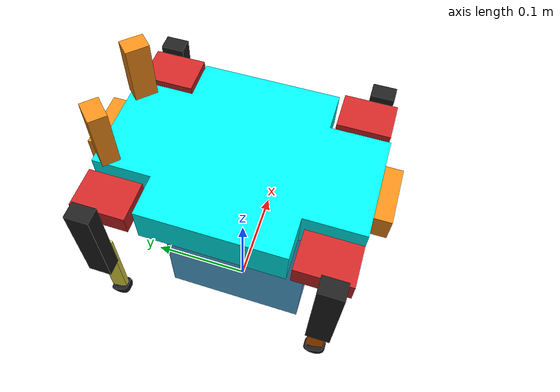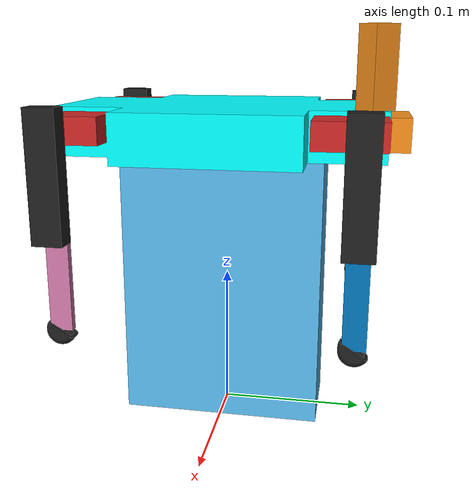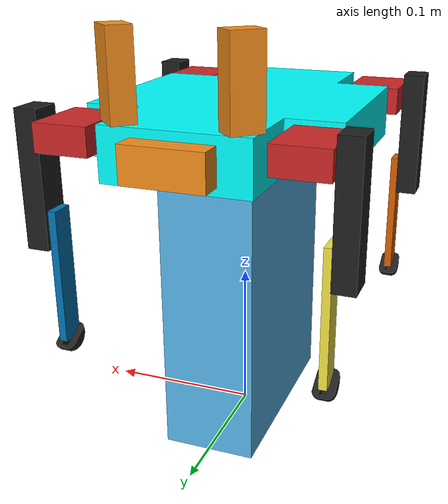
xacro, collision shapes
<?xml version="1.0" ?>
<robot name="dreamwalker_dummy" xmlns:xacro="http://www.ros.org/wiki/xacro">

	<xacro:include filename="$(find dreamwalker_description)/urdf/dreamwalker.gazebo" />
  	<xacro:include filename="$(find dreamwalker_description)/urdf/materials.xacro" />

	<!-- WORLD LINK -->
	<link name="world"/>

  	<joint name="fixed" type="fixed">
    	<parent link="world"/>
    	<child link="support_element"/>
  	</joint>

  	<!-- SUPPORT ELEMENT -->

	<link name="support_element">

		<inertial>
			<mass value="0.8"/>
			<origin xyz="0 0 0.082" rpy="0 0 0"/>
			<inertia ixx="0.002858" ixy="0" ixz="0" iyy="0.002726" iyz="0" izz="0.0006479"/>
		</inertial>

		<collision name="collision_base">
			<origin xyz="0 0 0.095" rpy="0 0 0"/>
			<geometry>
				<box size="0.06 0.14 0.19"/>
			</geometry>
		</collision>

		<visual>
			<origin xyz="0 0 0" rpy="0 0 0"/>
			<geometry>
				<mesh filename="package://dreamwalker_description/meshes/support_test_element.dae" scale="0.001 0.001 0.001" />
			</geometry>
		</visual>

	</link>

	<joint name="dummy_joint" type="revolute">

		<origin xyz="0 0 0.19" rpy="0 0 0"/>
		<parent link="support_element"/>
		<child link="main_body"/>
		<limit effort="1000" velocity="0.0" lower="0" upper="0" />
	</joint>

	<!--### ROBOT BODY ### -->

	<link name="main_body">

		<inertial>
			<mass value="0.388"/>
			<origin xyz="0 0 0.0155" rpy="0 0 0"/>
			<inertia ixx="0.001096" ixy="0" ixz="0" iyy="0.0006744" iyz="0" izz="0.001658"/>
		</inertial>

		<collision name="collision_base">
			<origin xyz="0 0 0" rpy="0 0 0"/>
			<geometry>
				<mesh filename="package://dreamwalker_description/meshes/main_body_collision.stl" scale="0.001 0.001 0.001" />
			</geometry>
		</collision>

		<visual>
			<origin xyz="0 0 0" rpy="0 0 0"/>
			<geometry>
				<mesh filename="package://dreamwalker_description/meshes/main_body.stl" scale="0.001 0.001 0.001" />
			</geometry>
			<material name="Cyan">
  		        <color rgba="0 1.0 1.0 1.0"/>
  			</material>
		</visual>

	</link>

	<!--### SHOULDERS ### -->

	<link name="link_shoulder1">

		<inertial>
			<mass value="0.0198"/>
			<origin xyz="-0.008165 0.022472 0" rpy="0 0 0"/>
			<inertia ixx="0.000003218011" ixy="0.000000199995" ixz="0" iyy="0.000001946476" iyz="0" izz="0.000004027678"/>
		</inertial>

		<collision name="collision_base">
			<origin xyz="-0.007 0.0225 0" rpy="0 0 0"/>
			<geometry>
				<box size="0.034 0.045 0.0175"/>
			</geometry>
		</collision>

		<visual>
			<origin xyz="0 0 0" rpy="0 0 0"/>
			<geometry>
				<mesh filename="package://dreamwalker_description/meshes/link_shoulder1.stl" scale="0.001 0.001 0.001" />
			</geometry>
		</visual>

	</link>

	<link name="link_shoulder2">

		<inertial>
			<mass value="0.0198"/>
			<origin xyz="0.008165 0.022472 0" rpy="0 0 0"/>
			<inertia ixx="0.000003218011" ixy="-0.000000199995" ixz="0" iyy="0.000001946476" iyz="0" izz="0.000004027678"/>
		</inertial>

		<collision name="collision_base">
			<origin xyz="0.007 0.0225 0" rpy="0 0 0"/>
			<geometry>
				<box size="0.034 0.045 0.0175"/>
			</geometry>
		</collision>

		<visual>
			<origin xyz="0 0 0" rpy="0 0 0"/>
			<geometry>
				<mesh filename="package://dreamwalker_description/meshes/link_shoulder2.stl" scale="0.001 0.001 0.001" />
			</geometry>
		</visual>

	</link>

	<link name="link_shoulder3">

		<inertial>
			<mass value="0.0198"/>
			<origin xyz="-0.008165 -0.022472 0" rpy="0 0 0"/>
			<inertia ixx="0.000003218011" ixy="-0.000000199995" ixz="0" iyy="0.000001946476" iyz="0" izz="0.000004027678"/>
		</inertial>

		<collision name="collision_base">
			<origin xyz="-0.007 -0.0225 0" rpy="0 0 0"/>
			<geometry>
				<box size="0.034 0.045 0.0175"/>
			</geometry>
		</collision>

		<visual>
			<origin xyz="0 0 0" rpy="0 0 0"/>
			<geometry>
				<mesh filename="package://dreamwalker_description/meshes/link_shoulder3.stl" scale="0.001 0.001 0.001" />
			</geometry>
		</visual>

	</link>

	<link name="link_shoulder4">

		<inertial>
			<mass value="0.0198"/>
			<origin xyz="0.008165 -0.022472 0" rpy="0 0 0"/>
			<inertia ixx="0.000003218011" ixy="0.000000199995" ixz="0" iyy="0.000001946476" iyz="0" izz="0.000004027678"/>
		</inertial>

		<collision name="collision_base">
			<origin xyz="0.007 -0.0225 0" rpy="0 0 0"/>
			<geometry>
				<box size="0.034 0.045 0.0175"/>
			</geometry>
		</collision>

		<visual>
			<origin xyz="0 0 0" rpy="0 0 0"/>
			<geometry>
				<mesh filename="package://dreamwalker_description/meshes/link_shoulder4.stl" scale="0.001 0.001 0.001" />
			</geometry>
		</visual>

	</link>

	<!--### FEMURS ### -->

	<link name="link_femur1">

		<inertial>
			<mass value="0.0218"/>
			<origin xyz="-0.012278 0 -0.031262" rpy="0 0 0"/>
			<inertia ixx="0.00001388" ixy="0" ixz="-0.000000908897" iyy="0.00001369" iyz="0" izz="0.000001695609"/>
		</inertial>

		<collision name="collision_base">
			<origin xyz="-0.00725 0 -0.0275" rpy="0 0 0"/>
			<geometry>
				<box size="0.014 0.02 0.085"/>
			</geometry>
		</collision>

		<visual>
			<origin xyz="0 0 0" rpy="0 0 0"/>
			<geometry>
				<mesh filename="package://dreamwalker_description/meshes/link_femur1.stl" scale="0.001 0.001 0.001" />
			</geometry>
			<material name="black"/>
		</visual>

	</link>

	<link name="link_femur2">

		<inertial>
			<mass value="0.0218"/>
			<origin xyz="0.012278 0 -0.031262" rpy="0 0 0"/>
			<inertia ixx="0.00001388" ixy="0" ixz="0.000000908897" iyy="0.00001369" iyz="0" izz="0.000001695609"/>
		</inertial>

		<collision name="collision_base">
			<origin xyz="0.00725 0 -0.0275" rpy="0 0 0"/>
			<geometry>
				<box size="0.014 0.02 0.085"/>
			</geometry>
		</collision>

		<visual>
			<origin xyz="0 0 0" rpy="0 0 0"/>
			<geometry>
				<mesh filename="package://dreamwalker_description/meshes/link_femur2.stl" scale="0.001 0.001 0.001" />
			</geometry>
			<material name="black"/>
		</visual>

	</link>

	<link name="link_femur3">

		<inertial>
			<mass value="0.0218"/>
			<origin xyz="-0.012278 0 -0.031262" rpy="0 0 0"/>
			<inertia ixx="0.00001388" ixy="0" ixz="-0.000000908897" iyy="0.00001369" iyz="0" izz="0.000001695609"/>
		</inertial>

		<collision name="collision_base">
			<origin xyz="-0.00725 0 -0.0275" rpy="0 0 0"/>
			<geometry>
				<box size="0.014 0.02 0.085"/>
			</geometry>
		</collision>

		<visual>
			<origin xyz="0 0 0" rpy="0 0 0"/>
			<geometry>
				<mesh filename="package://dreamwalker_description/meshes/link_femur3.stl" scale="0.001 0.001 0.001" />
			</geometry>
			<material name="black"/>
		</visual>

	</link>

	<link name="link_femur4">

		<inertial>
			<mass value="0.0218"/>
			<origin xyz="0.012278 0 -0.031262" rpy="0 0 0"/>
			<inertia ixx="0.00001388" ixy="0" ixz="0.000000908897" iyy="0.00001369" iyz="0" izz="0.000001695609"/>
		</inertial>

		<collision name="collision_base">
			<origin xyz="0.00725 0 -0.0275" rpy="0 0 0"/>
			<geometry>
				<box size="0.014 0.02 0.085"/>
			</geometry>
		</collision>

		<visual>
			<origin xyz="0 0 0" rpy="0 0 0"/>
			<geometry>
				<mesh filename="package://dreamwalker_description/meshes/link_femur4.stl" scale="0.001 0.001 0.001" />
			</geometry>
			<material name="black"/>
		</visual>

	</link>

	<link name="link_tibia1">

		<inertial>
			<mass value="0.00730"/>
			<origin xyz="-0.0025 0.0009 -0.032102" rpy="0 0 0"/>
			<inertia ixx="0.0000050464" ixy="0" ixz="0" iyy="0.000004893134" iyz="0.00000009901" izz="0.00000018368"/>
		</inertial>

		<collision name="collision_base">
			<origin xyz="-0.0025 0 -0.033" rpy="0 0 0"/>
			<geometry>
				<box size="0.005 0.015 0.085"/>
			</geometry>
		</collision>

		<visual>
			<origin xyz="0 0 0" rpy="0 0 0"/>
			<geometry>
				<mesh filename="package://dreamwalker_description/meshes/link_forearm1.stl" scale="0.001 0.001 0.001" />
			</geometry>
		</visual>

	</link>

	<link name="link_tibia2">

		<inertial>
			<mass value="0.00730"/>
			<origin xyz="0.0025 0.0009 -0.032102" rpy="0 0 0"/>
			<inertia ixx="0.0000050464" ixy="0" ixz="0" iyy="0.000004893134" iyz="0.00000009901" izz="0.00000018368"/>
		</inertial>

		<collision name="collision_base">
			<origin xyz="0.0025 0 -0.033" rpy="0 0 0"/>
			<geometry>
				<box size="0.005 0.015 0.085"/>
			</geometry>
		</collision>

		<visual>
			<origin xyz="0 0 0" rpy="0 0 0"/>
			<geometry>
				<mesh filename="package://dreamwalker_description/meshes/link_forearm2.stl" scale="0.001 0.001 0.001" />
			</geometry>
		</visual>

	</link>

	<link name="link_tibia3">

		<inertial>
			<mass value="0.00730"/>
			<origin xyz="-0.0025 0.0009 -0.032102" rpy="0 0 0"/>
			<inertia ixx="0.0000050464" ixy="0" ixz="0" iyy="0.000004893134" iyz="0.00000009901" izz="0.00000018368"/>
		</inertial>

		<collision name="collision_base">
			<origin xyz="-0.0025 0 -0.033" rpy="0 0 0"/>
			<geometry>
				<box size="0.005 0.015 0.085"/>
			</geometry>
		</collision>

		<visual>
			<origin xyz="0 0 0" rpy="0 0 0"/>
			<geometry>
				<mesh filename="package://dreamwalker_description/meshes/link_forearm1.stl" scale="0.001 0.001 0.001" />
			</geometry>
		</visual>

	</link>

	<link name="link_tibia4">

		<inertial>
			<mass value="0.00730"/>
			<origin xyz="0.0025 0.0009 -0.032102" rpy="0 0 0"/>
			<inertia ixx="0.0000050464" ixy="0" ixz="0" iyy="0.000004893134" iyz="0.00000009901" izz="0.00000018368"/>
		</inertial>

		<collision name="collision_base">
			<origin xyz="0.0025 0 -0.033" rpy="0 0 0"/>
			<geometry>
				<box size="0.005 0.015 0.085"/>
			</geometry>
		</collision>

		<visual>
			<origin xyz="0 0 0" rpy="0 0 0"/>
			<geometry>
				<mesh filename="package://dreamwalker_description/meshes/link_forearm2.stl" scale="0.001 0.001 0.001" />
			</geometry>
		</visual>

	</link>

	<link name="link_foot1">

		<inertial>
			<mass value="0.0013"/>
			<origin xyz="0 0 -0.004355" rpy="0 0 0"/>
			<inertia ixx="0.000000043185" ixy="0" ixz="0" iyy="0.000000029326" iyz="-0.000000074876" izz="0.000000054089"/>
		</inertial>

		<collision>
			<origin xyz="0 0 0" rpy="0 0 0"/>
			<geometry>
				<mesh filename="package://dreamwalker_description/meshes/link_foot.dae" scale="0.001 0.001 0.001" />
			</geometry>
		</collision>

		<visual>
			<origin xyz="0 0 0" rpy="0 0 0"/>
			<geometry>
				<mesh filename="package://dreamwalker_description/meshes/link_foot.dae" scale="0.001 0.001 0.001" />
			</geometry>
			<material name="black"/>
		</visual>

	</link>

	<link name="link_foot2">

		<inertial>
			<mass value="0.0013"/>
			<origin xyz="0 0 -0.004355" rpy="0 0 0"/>
			<inertia ixx="0.000000043185" ixy="0" ixz="0" iyy="0.000000029326" iyz="-0.000000074876" izz="0.000000054089"/>
		</inertial>

		<collision>
			<origin xyz="0 0 0" rpy="0 0 0"/>
			<geometry>
				<mesh filename="package://dreamwalker_description/meshes/link_foot.dae" scale="0.001 0.001 0.001" />
			</geometry>
		</collision>

		<visual>
			<origin xyz="0 0 0" rpy="0 0 0"/>
			<geometry>
				<mesh filename="package://dreamwalker_description/meshes/link_foot.dae" scale="0.001 0.001 0.001" />
			</geometry>
			<material name="black"/>
		</visual>

	</link>

	<link name="link_foot3">

		<inertial>
			<mass value="0.0013"/>
			<origin xyz="0 0 -0.004355" rpy="0 0 0"/>
			<inertia ixx="0.000000043185" ixy="0" ixz="0" iyy="0.000000029326" iyz="-0.000000074876" izz="0.000000054089"/>
		</inertial>

		<collision>
			<origin xyz="0 0 0" rpy="0 0 0"/>
			<geometry>
				<mesh filename="package://dreamwalker_description/meshes/link_foot.dae" scale="0.001 0.001 0.001" />
			</geometry>
		</collision>

		<visual>
			<origin xyz="0 0 0" rpy="0 0 0"/>
			<geometry>
				<mesh filename="package://dreamwalker_description/meshes/link_foot.dae" scale="0.001 0.001 0.001" />
			</geometry>
			<material name="black"/>
		</visual>

	</link>

	<link name="link_foot4">

		<inertial>
			<mass value="0.0013"/>
			<origin xyz="0 0 -0.004355" rpy="0 0 0"/>
			<inertia ixx="0.000000043185" ixy="0" ixz="0" iyy="0.000000029326" iyz="-0.000000074876" izz="0.000000054089"/>
		</inertial>

		<collision>
			<origin xyz="0 0 0" rpy="0 0 0"/>
			<geometry>
				<mesh filename="package://dreamwalker_description/meshes/link_foot.dae" scale="0.001 0.001 0.001" />
			</geometry>
		</collision>

		<visual>
			<origin xyz="0 0 0" rpy="0 0 0"/>
			<geometry>
				<mesh filename="package://dreamwalker_description/meshes/link_foot.dae" scale="0.001 0.001 0.001" />
			</geometry>
			<material name="black"/>
		</visual>

	</link>

	<!-- ### JOINTS ### -->

	<joint name="shoulder_joint1" type="revolute">

		<origin xyz="-0.062 0.064 0.022" rpy="0 0 0"/>
		<axis xyz="0 1 0"/>
		<parent link="main_body"/>
		<child link="link_shoulder1"/>
		<limit effort="2.5" velocity="1.0" lower="-0.5235987755983" upper="0.5235987755983" />
	</joint>

	<joint name="shoulder_joint2" type="revolute">

		<origin xyz="0.062 0.064 0.022" rpy="0 0 0"/>
		<axis xyz="0 1 0"/>
		<parent link="main_body"/>
		<child link="link_shoulder2"/>
		<limit effort="2.5" velocity="1.0" lower="-0.5235987755983" upper="0.5235987755983" />
	</joint>

	<joint name="shoulder_joint3" type="revolute">

		<origin xyz="-0.062 -0.064 0.022" rpy="0 0 0"/>
		<axis xyz="0 1 0"/>
		<parent link="main_body"/>
		<child link="link_shoulder3"/>
		<limit effort="2.5" velocity="1.0" lower="-0.5235987755983" upper="0.5235987755983" />
	</joint>

	<joint name="shoulder_joint4" type="revolute">

		<origin xyz="0.062 -0.064 0.022" rpy="0 0 0"/>
		<axis xyz="0 1 0"/>
		<parent link="main_body"/>
		<child link="link_shoulder4"/>
		<limit effort="2.5" velocity="1.0" lower="-0.52359" upper="0.52359" />
	</joint>

	<joint name="limb_joint1" type="revolute">

		<origin xyz="-0.024 0.0305 0" rpy="0 0 0"/>
		<axis xyz="1 0 0"/>
		<parent link="link_shoulder1"/>
		<child link="link_femur1"/>
		<limit effort="2.5" velocity="1.0" lower="-1.57079" upper="1.57079" />
	</joint>

	<joint name="limb_joint2" type="revolute">

		<origin xyz="0.024 0.0305 0" rpy="0 0 0"/>
		<axis xyz="1 0 0"/>
		<parent link="link_shoulder2"/>
		<child link="link_femur2"/>
		<limit effort="2.5" velocity="1.0" lower="-1.57079" upper="1.57079" />
	</joint>

	<joint name="limb_joint3" type="revolute">

		<origin xyz="-0.024 -0.0305 0" rpy="0 0 0"/>
		<axis xyz="1 0 0"/>
		<parent link="link_shoulder3"/>
		<child link="link_femur3"/>
		<limit effort="2.5" velocity="1.0" lower="-1.57079" upper="1.57079" />
	</joint>

	<joint name="limb_joint4" type="revolute">

		<origin xyz="0.024 -0.0305 0" rpy="0 0 0"/>
		<axis xyz="1 0 0"/>
		<parent link="link_shoulder4"/>
		<child link="link_femur4"/>
		<limit effort="2.5" velocity="1.0" lower="-1.57079" upper="1.57079" />
	</joint>

	<joint name="knee_joint1" type="revolute">

		<origin xyz="0.005 0 -0.055" rpy="0 0 0"/>
		<axis xyz="1 0 0"/>
		<parent link="link_femur1"/>
		<child link="link_tibia1"/>
		<limit effort="2.5" velocity="1.0" lower="0" upper="2.617993878" />
	</joint>

	<joint name="knee_joint2" type="revolute">

		<origin xyz="-0.005 0 -0.055" rpy="0 0 0"/>
		<axis xyz="1 0 0"/>
		<parent link="link_femur2"/>
		<child link="link_tibia2"/>
		<limit effort="2.5" velocity="1.0" lower="0" upper="2.617993878" />
	</joint>

	<joint name="knee_joint3" type="revolute">

		<origin xyz="0.005 0 -0.055" rpy="0 0 0"/>
		<axis xyz="1 0 0"/>
		<parent link="link_femur3"/>
		<child link="link_tibia3"/>
		<limit effort="2.5" velocity="1.0" lower="0" upper="2.617993878" />
	</joint>

	<joint name="knee_joint4" type="revolute">

		<origin xyz="-0.005 0 -0.055" rpy="0 0 0"/>
		<axis xyz="1 0 0"/>
		<parent link="link_femur4"/>
		<child link="link_tibia4"/>
		<limit effort="2.5" velocity="1.0" lower="0" upper="2.617993878" />
	</joint>

	<joint name="foot_joint1" type="fixed">

		<origin xyz="-0.0025 0 -0.075" rpy="-0.52359 0 0"/>
		<parent link="link_tibia1"/>
		<child link="link_foot1"/>
	</joint>

	<joint name="foot_joint2" type="fixed">

		<origin xyz="0.0025 0 -0.075" rpy="-0.52359 0 0"/>
		<parent link="link_tibia2"/>
		<child link="link_foot2"/>
	</joint>

	<joint name="foot_joint3" type="fixed">

		<origin xyz="-0.0025 0 -0.075" rpy="-0.52359 0 0"/>
		<parent link="link_tibia3"/>
		<child link="link_foot3"/>
	</joint>

	<joint name="foot_joint4" type="fixed">

		<origin xyz="0.0025 0 -0.075" rpy="-0.52359 0 0"/>
		<parent link="link_tibia4"/>
		<child link="link_foot4"/>
	</joint>

	<!-- ### SENSORS ### -->

	<link name="link_m_sensor">

		<inertial>
			<mass value="0.0102"/>
			<origin xyz="0 0.01591 0.011" rpy="0 0 0"/>
			<inertia ixx="0.000000566328" ixy="0" ixz="0" iyy="0.000002259218" iyz="-0.0000000944" izz="0.000002156532"/>
		</inertial>

		<collision name="collision_base">
			<origin xyz="0 0.015 0.01125" rpy="0 0 0"/>
			<geometry>
				<box size="0.050 0.0293 0.0225"/>
			</geometry>
		</collision>

		<visual>
			<origin xyz="0 0 0" rpy="0 0 0"/>
			<geometry>
				<mesh filename="package://dreamwalker_description/meshes/link_fb_sensor.stl" scale="0.001 0.001 0.001" />
			</geometry>
		</visual>

	</link>

	<joint name="m_sensor_joint" type="revolute">

		<origin xyz="0 0.095 0.005" rpy="0 0 0"/>
		<parent link="main_body"/>
		<child link="link_m_sensor"/>
		<limit effort="1000" velocity="0.0" lower="0" upper="0" />
	</joint>

	<link name="link_b_sensor">

		<inertial>
			<mass value="0.0102"/>
			<origin xyz="0 0.01591 0.011" rpy="0 0 0"/>
			<inertia ixx="0.000000566328" ixy="0" ixz="0" iyy="0.000002259218" iyz="-0.0000000944" izz="0.000002156532"/>
		</inertial>

		<collision name="collision_base">
			<origin xyz="0 0.015 0.01125" rpy="0 0 0"/>
			<geometry>
				<box size="0.050 0.0293 0.0225"/>
			</geometry>
		</collision>

		<visual>
			<origin xyz="0 0 0" rpy="0 0 0"/>
			<geometry>
				<mesh filename="package://dreamwalker_description/meshes/link_fb_sensor.stl" scale="0.001 0.001 0.001" />
			</geometry>
		</visual>

	</link>

	<joint name="b_sensor_joint" type="revolute">

		<origin xyz="0 -0.095 0.005" rpy="0 0 3.141592"/>
		<parent link="main_body"/>
		<child link="link_b_sensor"/>
		<limit effort="1000" velocity="0.0" lower="0" upper="0" />
	</joint>

	<link name="link_l_sensor">

		<inertial>
			<mass value="0.00983"/>
			<origin xyz="0 0.01336 0.02495" rpy="0 0 0"/>
			<inertia ixx="0.000002392374" ixy="0" ixz="0" iyy="0.000002455416" iyz="-0.000000093261" izz="0.000000406513"/>
		</inertial>

		<collision name="collision_base">
			<origin xyz="0 0.015 0.025" rpy="0 0 0"/>
			<geometry>
				<box size="0.020 0.015 0.052"/>
			</geometry>
		</collision>

		<visual>
			<origin xyz="0 0 0" rpy="0 0 0"/>
			<geometry>
				<mesh filename="package://dreamwalker_description/meshes/link_rl_sensor.stl" scale="0.001 0.001 0.001" />
			</geometry>
		</visual>

	</link>

	<joint name="l_sensor_joint" type="revolute">

		<origin xyz="-0.025 0.090 0.034" rpy="0 0 0.785398163"/>
		<parent link="main_body"/>
		<child link="link_l_sensor"/>
		<limit effort="1000" velocity="0.0" lower="0" upper="0" />
	</joint>

	<link name="link_r_sensor">

		<inertial>
			<mass value="0.00983"/>
			<origin xyz="0 0.01336 0.02495" rpy="0 0 0"/>
			<inertia ixx="0.000002392374" ixy="0" ixz="0" iyy="0.000002455416" iyz="-0.000000093261" izz="0.000000406513"/>
		</inertial>

		<collision name="collision_base">
			<origin xyz="0 0.015 0.025" rpy="0 0 0"/>
			<geometry>
				<box size="0.020 0.015 0.052"/>
			</geometry>
		</collision>

		<visual>
			<origin xyz="0 0 0" rpy="0 0 0"/>
			<geometry>
				<mesh filename="package://dreamwalker_description/meshes/link_rl_sensor.stl" scale="0.001 0.001 0.001" />
			</geometry>
		</visual>

	</link>

	<joint name="r_sensor_joint" type="revolute">

		<origin xyz="0.025 0.090 0.034" rpy="0 0 -0.785398163"/>
		<parent link="main_body"/>
		<child link="link_r_sensor"/>
		<limit effort="1000" velocity="0.0" lower="0" upper="0" />
	</joint>

	<!-- ### TRANSMISSIONS -->

	<transmission name="tran_sh1">

    	<type>transmission_interface/SimpleTransmission</type>

    	<joint name="shoulder_joint1">
      		<hardwareInterface>hardware_interface/EffortJointInterface</hardwareInterface>
    	</joint>

    	<actuator name="shoulder1">
      		<hardwareInterface>EffortJointInterface</hardwareInterface>
      		<mechanicalReduction>1</mechanicalReduction>
    	</actuator>

  	</transmission>

  	<transmission name="tran_sh2">

    	<type>transmission_interface/SimpleTransmission</type>

    	<joint name="shoulder_joint2">
      		<hardwareInterface>hardware_interface/EffortJointInterface</hardwareInterface>
    	</joint>

    	<actuator name="shoulder2">
      		<hardwareInterface>EffortJointInterface</hardwareInterface>
      		<mechanicalReduction>1</mechanicalReduction>
    	</actuator>

  	</transmission>

  	<transmission name="tran_sh3">

    	<type>transmission_interface/SimpleTransmission</type>

    	<joint name="shoulder_joint3">
      		<hardwareInterface>hardware_interface/EffortJointInterface</hardwareInterface>
    	</joint>

    	<actuator name="shoulder3">
      		<hardwareInterface>EffortJointInterface</hardwareInterface>
      		<mechanicalReduction>1</mechanicalReduction>
    	</actuator>

  	</transmission>

  	<transmission name="tran_sh4">

    	<type>transmission_interface/SimpleTransmission</type>

    	<joint name="shoulder_joint4">
      		<hardwareInterface>hardware_interface/EffortJointInterface</hardwareInterface>
    	</joint>

    	<actuator name="shoulder4">
      		<hardwareInterface>EffortJointInterface</hardwareInterface>
      		<mechanicalReduction>1</mechanicalReduction>
    	</actuator>

  	</transmission>

  	<transmission name="tran_lim1">

    	<type>transmission_interface/SimpleTransmission</type>

    	<joint name="limb_joint1">
      		<hardwareInterface>hardware_interface/EffortJointInterface</hardwareInterface>
    	</joint>

    	<actuator name="arm1">
      		<hardwareInterface>EffortJointInterface</hardwareInterface>
      		<mechanicalReduction>1</mechanicalReduction>
    	</actuator>

  	</transmission>

  	<transmission name="tran_lim2">

    	<type>transmission_interface/SimpleTransmission</type>

    	<joint name="limb_joint2">
      		<hardwareInterface>hardware_interface/EffortJointInterface</hardwareInterface>
    	</joint>

    	<actuator name="arm2">
      		<hardwareInterface>EffortJointInterface</hardwareInterface>
      		<mechanicalReduction>1</mechanicalReduction>
    	</actuator>

  	</transmission>

  	<transmission name="tran_lim3">

    	<type>transmission_interface/SimpleTransmission</type>

    	<joint name="limb_joint3">
      		<hardwareInterface>hardware_interface/EffortJointInterface</hardwareInterface>
    	</joint>

    	<actuator name="arm3">
      		<hardwareInterface>EffortJointInterface</hardwareInterface>
      		<mechanicalReduction>1</mechanicalReduction>
    	</actuator>

  	</transmission>

  	<transmission name="tran_lim4">

    	<type>transmission_interface/SimpleTransmission</type>

    	<joint name="limb_joint4">
      		<hardwareInterface>hardware_interface/EffortJointInterface</hardwareInterface>
    	</joint>

    	<actuator name="arm4">
      		<hardwareInterface>EffortJointInterface</hardwareInterface>
      		<mechanicalReduction>1</mechanicalReduction>
    	</actuator>

  	</transmission>

  	<transmission name="tran_knee1">

    	<type>transmission_interface/SimpleTransmission</type>

    	<joint name="knee_joint1">
      		<hardwareInterface>hardware_interface/EffortJointInterface</hardwareInterface>
    	</joint>

    	<actuator name="forearm1">
      		<hardwareInterface>EffortJointInterface</hardwareInterface>
      		<mechanicalReduction>1</mechanicalReduction>
    	</actuator>

  	</transmission>

  	<transmission name="tran_knee2">

    	<type>transmission_interface/SimpleTransmission</type>

    	<joint name="knee_joint2">
      		<hardwareInterface>hardware_interface/EffortJointInterface</hardwareInterface>
    	</joint>

    	<actuator name="forearm2">
      		<hardwareInterface>EffortJointInterface</hardwareInterface>
      		<mechanicalReduction>1</mechanicalReduction>
    	</actuator>

  	</transmission>

  	<transmission name="tran_knee3">

    	<type>transmission_interface/SimpleTransmission</type>

    	<joint name="knee_joint3">
      		<hardwareInterface>hardware_interface/EffortJointInterface</hardwareInterface>
    	</joint>

    	<actuator name="forearm3">
      		<hardwareInterface>EffortJointInterface</hardwareInterface>
      		<mechanicalReduction>1</mechanicalReduction>
    	</actuator>

  	</transmission>

  	<transmission name="tran_knee4">

    	<type>transmission_interface/SimpleTransmission</type>

    	<joint name="knee_joint4">
      		<hardwareInterface>hardware_interface/EffortJointInterface</hardwareInterface>
    	</joint>

    	<actuator name="forearm4">
      		<hardwareInterface>EffortJointInterface</hardwareInterface>
      		<mechanicalReduction>1</mechanicalReduction>
    	</actuator>

  	</transmission>

</robot>
